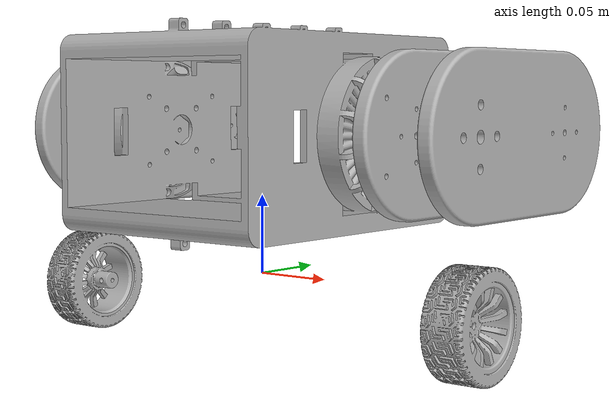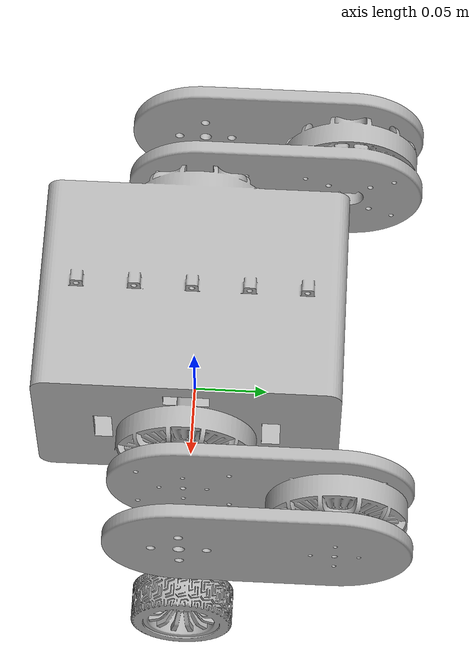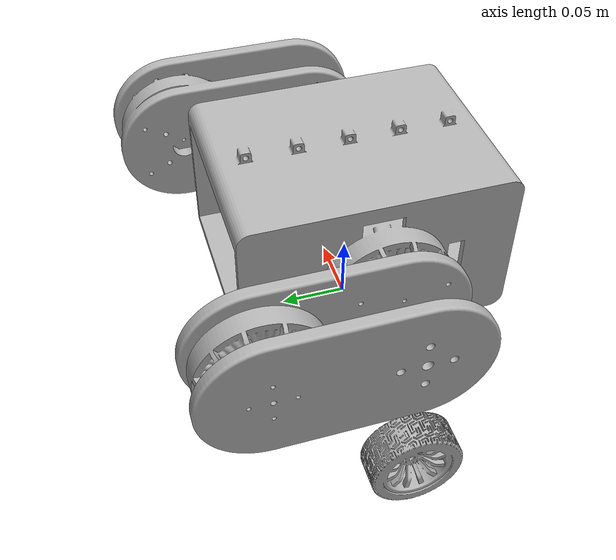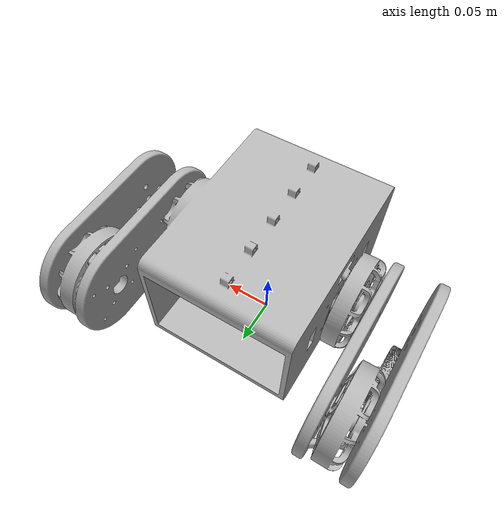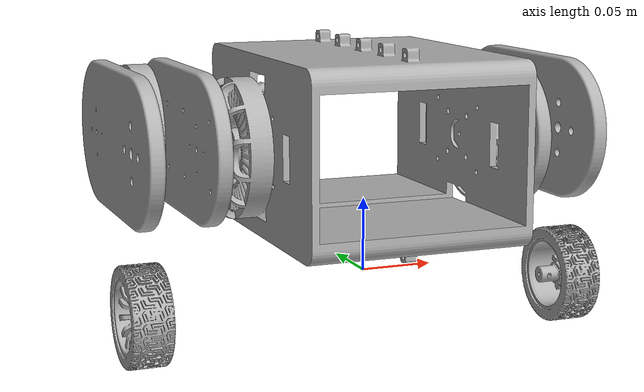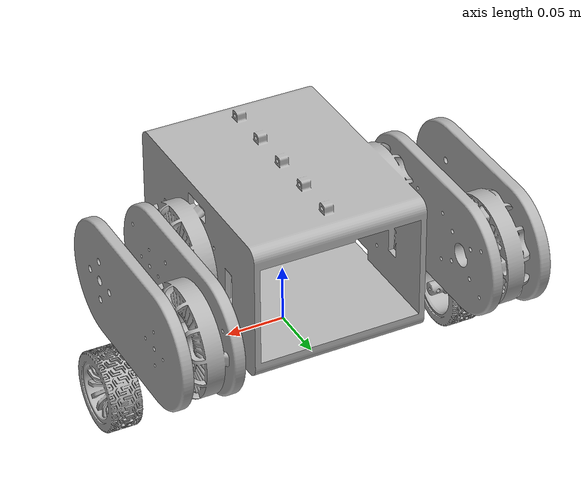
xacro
<?xml version="1.0" ?>
<robot name="Model_URDF" xmlns:xacro="http://www.ros.org/wiki/xacro">

<xacro:include filename="$(find description)/urdf/materials.xacro" />
<xacro:include filename="$(find description)/urdf/werdna.trans" />
<xacro:include filename="$(find description)/urdf/werdna.gazebo" />
<xacro:include filename="$(find description)/urdf/ros2_control.xacro"/>
<xacro:include filename="$(find description)/urdf/inertial_macros.xacro"/>

<link name="base_link">
  <inertial>
    <origin xyz="8.255943926937334e-16 6.222071400839627e-06 0.09003220777130991" rpy="0 0 0"/>
    <mass value="1.28449373160972"/>
    <inertia ixx="0.006551" iyy="0.006929" izz="0.007922" ixy="-0.0" iyz="1e-06" ixz="0.0"/>
  </inertial>
  <visual>
    <origin xyz="0 0 0" rpy="0 0 0"/>
    <geometry>
      <mesh filename="file://$(find description)/meshes/base_link.stl" scale="0.001 0.001 0.001"/>
    </geometry>
    <material name="silver"/>
  </visual>
  <collision>
    <origin xyz="0 0 0" rpy="0 0 0"/>
    <geometry>
      <mesh filename="file://$(find description)/meshes/base_link.stl" scale="0.001 0.001 0.001"/>
    </geometry>
  </collision>
</link>

<link name="left_hip_link_1">
  <inertial>
    <origin xyz="0.011758819752010485 0.06686706893041124 6.0867207592144035e-05" rpy="0 0 0"/>
    <mass value="2.0803747607810585"/>
    <inertia ixx="0.006766" iyy="0.001617" izz="0.005599" ixy="-0.000466" iyz="-4e-06" ixz="-2e-06"/>
  </inertial>
  <visual>
    <origin xyz="-0.106819 -1.1e-05 -0.089813" rpy="0 0 0"/>
    <geometry>
      <mesh filename="file://$(find description)/meshes/left_hip_link_1.stl" scale="0.001 0.001 0.001"/>
    </geometry>
    <material name="silver"/>
  </visual>
  <collision>
    <origin xyz="-0.106819 -1.1e-05 -0.089813" rpy="0 0 0"/>
    <geometry>
      <mesh filename="file://$(find description)/meshes/left_hip_link_1.stl" scale="0.001 0.001 0.001"/>
    </geometry>
  </collision>
</link>

<link name="left_knee_link_1">
  <inertial>
    <origin xyz="0.005000151819694404 -0.04965160838545733 -9.89511401844334e-08" rpy="0 0 0"/>
    <mass value="1.3786160886352554"/>
    <inertia ixx="0.004842" iyy="0.001037" izz="0.003827" ixy="0.0" iyz="0.0" ixz="0.0"/>
  </inertial>
  <visual>
    <origin xyz="-0.149819 -0.099813 -0.089989" rpy="0 0 0"/>
    <geometry>
      <mesh filename="file://$(find description)/meshes/left_knee_link_1.stl" scale="0.001 0.001 0.001"/>
    </geometry>
    <material name="silver"/>
  </visual>
  <collision>
    <origin xyz="-0.149819 -0.099813 -0.089989" rpy="0 0 0"/>
    <geometry>
      <mesh filename="file://$(find description)/meshes/left_knee_link_1.stl" scale="0.001 0.001 0.001"/>
    </geometry>
  </collision>
</link>

<link name="left_wheel_1">
  <inertial>
    <origin xyz="0.028530785004922093 8.657399680361583e-07 2.6613492925819937e-06" rpy="0 0 0"/>
    <mass value="1.395281692031758"/>
    <inertia ixx="0.006446" iyy="0.003461" izz="0.003461" ixy="0.0" iyz="-0.0" ixz="-0.0"/>
  </inertial>
  <visual>
    <origin xyz="-0.159819 0.000187 -0.089989" rpy="0 0 0"/>
    <geometry>
      <mesh filename="file://$(find description)/meshes/left_wheel_1.stl" scale="0.001 0.001 0.001"/>
    </geometry>
    <material name="silver"/>
  </visual>
  <collision>
    <origin xyz="-0.159819 0.000187 -0.089989" rpy="0 0 0"/>
    <geometry>
      <mesh filename="file://$(find description)/meshes/left_wheel_1.stl" scale="0.001 0.001 0.001"/>
    </geometry>
  </collision>
</link>

<link name="right_hip_link_1">
  <inertial>
    <origin xyz="-0.011758252602195512 0.06687324272075701 6.857959972715599e-05" rpy="0 0 0"/>
    <mass value="2.080289860725138"/>
    <inertia ixx="0.006767" iyy="0.001617" izz="0.0056" ixy="0.000466" iyz="-5e-06" ixz="2e-06"/>
  </inertial>
  <visual>
    <origin xyz="0.106819 1.1e-05 -0.089813" rpy="0 0 0"/>
    <geometry>
      <mesh filename="file://$(find description)/meshes/right_hip_link_1.stl" scale="0.001 0.001 0.001"/>
    </geometry>
    <material name="silver"/>
  </visual>
  <collision>
    <origin xyz="0.106819 1.1e-05 -0.089813" rpy="0 0 0"/>
    <geometry>
      <mesh filename="file://$(find description)/meshes/right_hip_link_1.stl" scale="0.001 0.001 0.001"/>
    </geometry>
  </collision>
</link>

<link name="right_knee_link_1">
  <inertial>
    <origin xyz="-0.005000151819694515 -0.04965160838545741 9.895113929625499e-08" rpy="0 0 0"/>
    <mass value="1.3786160886352556"/>
    <inertia ixx="0.004842" iyy="0.001037" izz="0.003827" ixy="0.0" iyz="0.0" ixz="0.0"/>
  </inertial>
  <visual>
    <origin xyz="0.149819 -0.099813 -0.090011" rpy="0 0 0"/>
    <geometry>
      <mesh filename="file://$(find description)/meshes/right_knee_link_1.stl" scale="0.001 0.001 0.001"/>
    </geometry>
    <material name="silver"/>
  </visual>
  <collision>
    <origin xyz="0.149819 -0.099813 -0.090011" rpy="0 0 0"/>
    <geometry>
      <mesh filename="file://$(find description)/meshes/right_knee_link_1.stl" scale="0.001 0.001 0.001"/>
    </geometry>
  </collision>
</link>

<link name="right_wheel_1">
  <inertial>
    <origin xyz="-0.028530785004922232 8.657399679596678e-07 -2.6638797760714095e-06" rpy="0 0 0"/>
    <mass value="1.395281692031758"/>
    <inertia ixx="0.006446" iyy="0.003461" izz="0.003461" ixy="-0.0" iyz="0.0" ixz="-0.0"/>
  </inertial>
  <visual>
    <origin xyz="0.159819 0.000187 -0.090011" rpy="0 0 0"/>
    <geometry>
      <mesh filename="file://$(find description)/meshes/right_wheel_1.stl" scale="0.001 0.001 0.001"/>
    </geometry>
    <material name="silver"/>
  </visual>
  <collision>
    <origin xyz="0.159819 0.000187 -0.090011" rpy="0 0 0"/>
    <geometry>
      <mesh filename="file://$(find description)/meshes/right_wheel_1.stl" scale="0.001 0.001 0.001"/>
    </geometry>
  </collision>
</link>

<joint name="left_hip_joint" type="revolute">
  <origin xyz="0.106819 1.1e-05 0.089813" rpy="0 0 0"/>
  <parent link="base_link"/>
  <child link="left_hip_link_1"/>
  <axis xyz="1.0 0.0 0.0"/>
  <limit upper="1.047198" lower="-1.047198" effort="2" velocity="1"/>
  <dynamics damping="0.01" friction="1000.0"/>
</joint>

<joint name="left_knee_joint" type="revolute">
  <origin xyz="0.043 0.099802 0.000176" rpy="0 0 0"/>
  <parent link="left_hip_link_1"/>
  <child link="left_knee_link_1"/>
  <axis xyz="1.0 0.0 -0.0"/>
  <limit upper="2.094395" lower="-1.047198" effort="2" velocity="1"/>
  <dynamics damping="0.01" friction="1000.0"/>
</joint>

<joint name="left_wheel_joint" type="continuous">
  <origin xyz="0.01 -0.1 0.0" rpy="0 0 0"/>
  <parent link="left_knee_link_1"/>
  <child link="left_wheel_1"/>
  <axis xyz="1.0 0.0 -0.0"/>
</joint>

<joint name="right_hip_joint" type="revolute">
  <origin xyz="-0.106819 -1.1e-05 0.089813" rpy="0 0 0"/>
  <parent link="base_link"/>
  <child link="right_hip_link_1"/>
  <axis xyz="-1.0 0.0 0.0"/>
  <limit upper="1.047198" lower="-1.047198" effort="2" velocity="1"/>
  <dynamics damping="0.01" friction="1000.0"/>
</joint>

<joint name="right_knee_joint" type="revolute">
  <origin xyz="-0.043 0.099824 0.000198" rpy="0 0 0"/>
  <parent link="right_hip_link_1"/>
  <child link="right_knee_link_1"/>
  <axis xyz="-1.0 0.0 0.0"/>
  <limit upper="1.047198" lower="-2.094395" effort="2" velocity="1"/>
  <dynamics damping="0.01" friction="1000.0"/>
</joint>

<joint name="right_wheel_joint" type="continuous">
  <origin xyz="-0.01 -0.1 0.0" rpy="0 0 0"/>
  <parent link="right_knee_link_1"/>
  <child link="right_wheel_1"/>
  <axis xyz="1.0 0.0 -0.0"/>
</joint>

</robot>

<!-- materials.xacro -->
<robot name="Model_URDF" xmlns:xacro="http://www.ros.org/wiki/xacro" >

<material name="silver">
  <color rgba="0.700 0.700 0.700 1.000"/>
</material>

</robot>

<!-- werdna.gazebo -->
<robot name="Model_URDF" xmlns:xacro="http://www.ros.org/wiki/xacro" >

<xacro:property name="body_color" value="Gazebo/Silver" />

<gazebo>
  <plugin name="control" filename="libgazebo_ros_control.so"/>
</gazebo>
<gazebo reference="base_link">
  <material>${body_color}</material>
  <mu1>0.2</mu1>
  <mu2>0.2</mu2>
  <self_collide>true</self_collide>
  <gravity>true</gravity>
</gazebo>

<gazebo reference="left_hip_link_1">
  <material>${body_color}</material>
  <mu1>0.2</mu1>
  <mu2>0.2</mu2>
  <maxVel>0.01</maxVel>
  <self_collide>true</self_collide>
</gazebo>

<gazebo reference="left_knee_link_1">
  <material>${body_color}</material>
  <mu1>0.2</mu1>
  <mu2>0.2</mu2>
  <maxVel>0.01</maxVel>
  <self_collide>true</self_collide>
</gazebo>

<gazebo reference="left_wheel_1">
  <mu1>0.9</mu1>
  <mu2>0.9</mu2>
  <fdir1>1 0 0</fdir1>
  <maxVel>0.0</maxVel>
  <maxContacts>1</maxContacts>
  <gravity>true</gravity>
  <restitution_coefficient>1</restitution_coefficient>
  <threshold>0</threshold>
  <self_collide>1</self_collide>
  <material>Gazebo/Black</material>
</gazebo>

<gazebo reference="right_hip_link_1">
  <material>${body_color}</material>
  <mu1>0.2</mu1>
  <mu2>0.2</mu2>
  <maxVel>0.01</maxVel>
  <self_collide>true</self_collide>
</gazebo>

<gazebo reference="right_knee_link_1">
  <material>${body_color}</material>
  <mu1>0.2</mu1>
  <mu2>0.2</mu2>
  <maxVel>0.01</maxVel>
  <self_collide>true</self_collide>
</gazebo>

<gazebo reference="right_wheel_1">
  <mu1>0.9</mu1>
  <mu2>0.9</mu2>
  <fdir1>1 0 0</fdir1>
  <maxVel>0.0</maxVel>
  <maxContacts>1</maxContacts>
  <gravity>true</gravity>
  <restitution_coefficient>1</restitution_coefficient>
  <threshold>0</threshold>
  <self_collide>1</self_collide>
  <material>Gazebo/Black</material>
</gazebo>

</robot>
